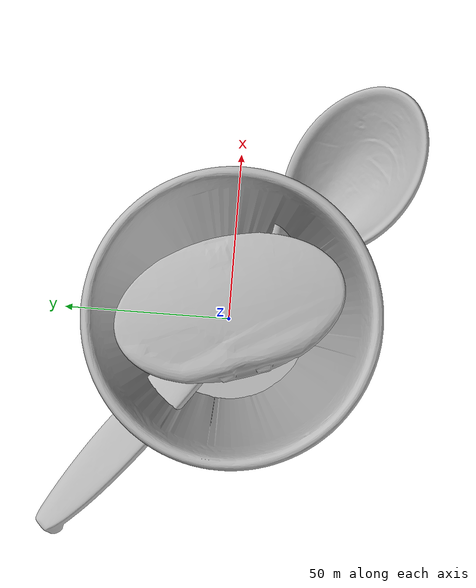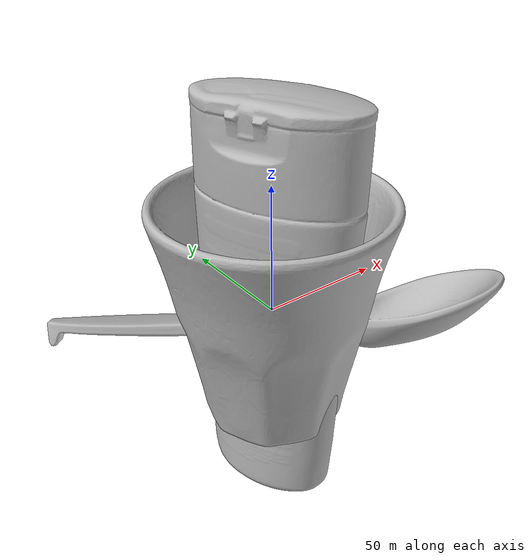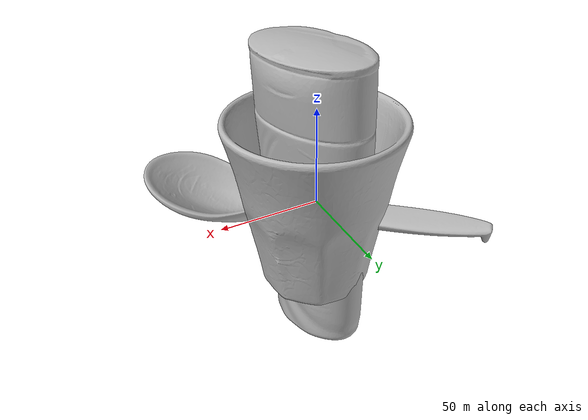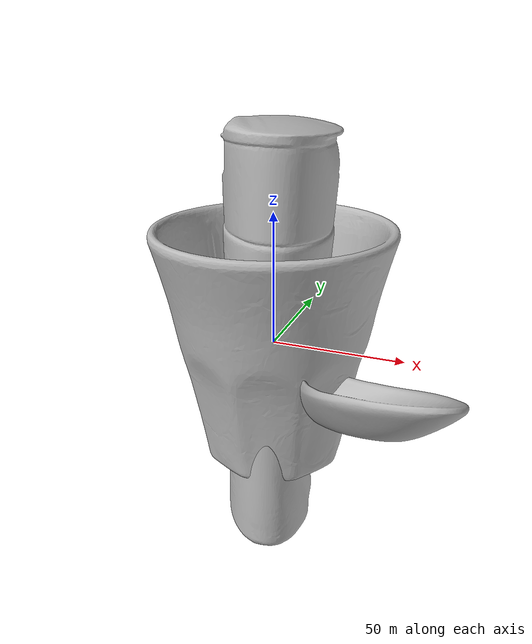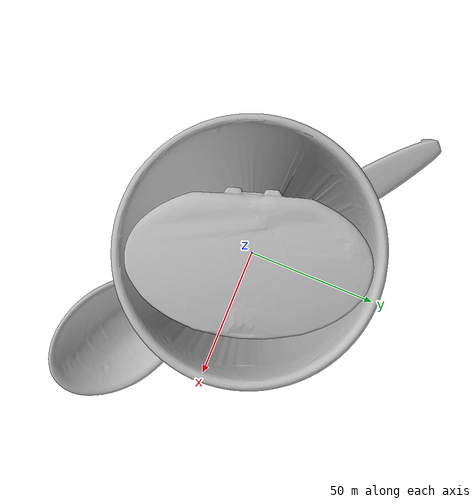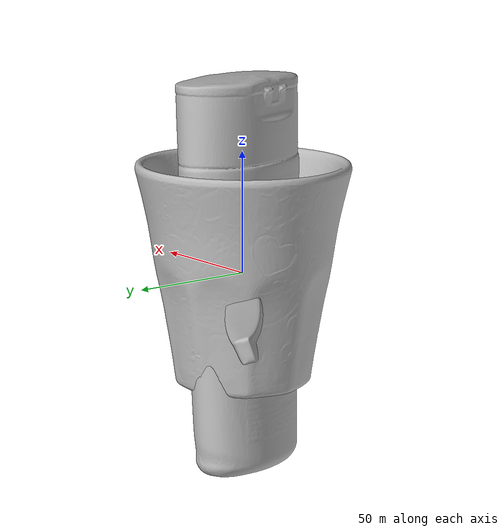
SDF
<sdf version="1.4">
 <world name="default">
  <light name="light1" type="point">
   <pose>0 0 1 0 0 0</pose>
   <diffuse>3 3 3 1</diffuse>
   <specular>3 3 3 1</specular>
  </light>
  <light name="light2" type="point">
   <pose>0 0.5 2 0 0 0</pose>
   <diffuse>1 1 1 1</diffuse>
   <specular>1 1 1 1</specular>
  </light>
  <light name="light3" type="point">
   <pose>0 0.5 2 0 0 0</pose>
   <diffuse>3 3 3 1</diffuse>
   <specular>3 3 3 1</specular>
  </light>
  <scene><ambient>0.7 0.7 0.7</ambient></scene>
  <model name="bottle1">
   <link name="link_bottle1">
    <collision name="default">
     <geometry>
      <mesh><uri>model://pure_zhen/collision_meshes/collision.obj</uri><scale>1.0 1.0 1.0</scale></mesh>
     </geometry>
     <surface>
      <friction><ode><mu>0.5</mu><mu2>0.5</mu2></ode></friction>
      <contact><ode><max_vel>0</max_vel><min_depth>0.0001</min_depth><kp>1e8</kp></ode></contact>
     </surface>
    </collision>
    <visual name="default">
     <geometry>
      <mesh><uri>model://pure_zhen/visual_meshes/visual.dae</uri><scale>1.0 1.0 1.0</scale></mesh>
     </geometry>
    </visual>
    <inertial>
     <mass>0.21128538250923157</mass>
     <pose>-8.582300506532192e-05 0.0002452346670906991 -0.0015797390369698405 -0.027642443229877835 0.005619248866174896 0.3057200614584077</pose>
     <inertia>
      <ixx>0.00063332287</ixx>
      <iyy>0.00063348823</iyy>
      <izz>6.6904315e-05</izz>
      <ixy>0</ixy>
      <ixz>0</ixz>
      <iyz>0</iyz>
     </inertia>
    </inertial>
   </link>
   <pose>-0.038743775337934494 -0.18239280581474304 0.0919484794139862 0.01948946676997719 -0.01608982380629664 0.4228522556674393</pose>
  </model>
  <model name="bottle2">
   <link name="link_bottle2">
    <collision name="default">
     <geometry>
      <mesh><uri>model://conditioner/collision_meshes/collision.obj</uri><scale>1.0 1.0 1.0</scale></mesh>
     </geometry>
     <surface>
      <friction><ode><mu>0.5</mu><mu2>0.5</mu2></ode></friction>
      <contact><ode><max_vel>0</max_vel><min_depth>0.0001</min_depth><kp>1e8</kp></ode></contact>
     </surface>
    </collision>
    <visual name="default">
     <geometry>
      <mesh><uri>model://conditioner/visual_meshes/visual.dae</uri><scale>1.0 1.0 1.0</scale></mesh>
     </geometry>
    </visual>
    <inertial>
     <mass>0.3611464500427246</mass>
     <pose>-0.00055994390277192 -0.0001729748910292983 0.004359682556241751 -0.005038374424784669 0.01530604350153207 0.015072341368129788</pose>
     <inertia>
      <ixx>0.00078562286</ixx>
      <iyy>0.0008415716</iyy>
      <izz>0.00012113213</izz>
      <ixy>0</ixy>
      <ixz>0</ixz>
      <iyz>0</iyz>
     </inertia>
    </inertial>
   </link>
   <pose>0.28108954429626465 -0.026738567277789116 0.08122971653938293 0.0368926025399164 -0.015660371576268987 1.8709059151442766</pose>
  </model>
  <model name="silverware1">
   <link name="link_silverware1">
    <collision name="default">
     <geometry>
      <mesh><uri>model://doraemon_spoon/collision_meshes/collision.obj</uri><scale>1.0 1.0 1.0</scale></mesh>
     </geometry>
     <surface>
      <friction><ode><mu>0.5</mu><mu2>0.5</mu2></ode></friction>
      <contact><ode><max_vel>0</max_vel><min_depth>0.0001</min_depth><kp>1e8</kp></ode></contact>
     </surface>
    </collision>
    <visual name="default">
     <geometry>
      <mesh><uri>model://doraemon_spoon/visual_meshes/visual.dae</uri><scale>1.0 1.0 1.0</scale></mesh>
     </geometry>
    </visual>
    <inertial>
     <mass>0.02099660225212574</mass>
     <pose>-0.02216508239507675 -0.0006374581134878099 -0.003332545980811119 -0.009147162014623967 0.07380421234862718 -0.01412382746948542</pose>
     <inertia>
      <ixx>1.6446534e-06</ixx>
      <iyy>4.671061e-05</iyy>
      <izz>4.7504738e-05</izz>
      <ixy>0</ixy>
      <ixz>0</ixz>
      <iyz>0</iyz>
     </inertia>
    </inertial>
   </link>
   <pose>-0.028005775064229965 0.0980353057384491 0.014739317819476128 0.2790284268736299 -0.010336625663991897 2.4890511897461276</pose>
  </model>
  <model name="stationery1">
   <link name="link_stationery1">
    <collision name="default">
     <geometry>
      <mesh><uri>model://correction_fuid/collision_meshes/collision.obj</uri><scale>1.0 1.0 1.0</scale></mesh>
     </geometry>
     <surface>
      <friction><ode><mu>0.5</mu><mu2>0.5</mu2></ode></friction>
      <contact><ode><max_vel>0</max_vel><min_depth>0.0001</min_depth><kp>1e8</kp></ode></contact>
     </surface>
    </collision>
    <visual name="default">
     <geometry>
      <mesh><uri>model://correction_fuid/visual_meshes/visual.dae</uri><scale>1.0 1.0 1.0</scale></mesh>
     </geometry>
    </visual>
    <inertial>
     <mass>0.046645622700452805</mass>
     <pose>-0.00012557735317386687 -0.0009722909890115261 -0.001618212671019137 -0.010846607840907904 0.019488357502694276 -0.015992455488392</pose>
     <inertia>
      <ixx>4.5177083e-05</ixx>
      <iyy>2.7341744e-06</iyy>
      <izz>4.635291e-05</izz>
      <ixy>0</ixy>
      <ixz>0</ixz>
      <iyz>0</iyz>
     </inertia>
    </inertial>
   </link>
   <pose>0.014333424158394337 -0.020565832033753395 0.009632827714085579 -0.0017271179509640029 -0.056167953000969856 2.0068774417103112</pose>
  </model>
  <model name="bowl1">
   <link name="link_bowl1">
    <collision name="default">
     <geometry>
      <mesh><uri>model://doraemon_bowl/collision_meshes/collision.obj</uri><scale>1.0 1.0 1.0</scale></mesh>
     </geometry>
     <surface>
      <friction><ode><mu>0.5</mu><mu2>0.5</mu2></ode></friction>
      <contact><ode><max_vel>0</max_vel><min_depth>0.0001</min_depth><kp>1e8</kp></ode></contact>
     </surface>
    </collision>
    <visual name="default">
     <geometry>
      <mesh><uri>model://doraemon_bowl/visual_meshes/visual.dae</uri><scale>1.0 1.0 1.0</scale></mesh>
     </geometry>
    </visual>
    <inertial>
     <mass>0.11811670660972595</mass>
     <pose>-0.014629551209509373 0.0004857121384702623 -0.0020864885300397873 -0.00509396228069995 -0.10568398533611668 -0.02642645986873745</pose>
     <inertia>
      <ixx>0.00016378764</ixx>
      <iyy>0.00021554313</iyy>
      <izz>0.00031711452</izz>
      <ixy>0</ixy>
      <ixz>0</ixz>
      <iyz>0</iyz>
     </inertia>
    </inertial>
   </link>
   <pose>0.17790354788303375 -0.06250491738319397 0.02588142268359661 0.00822980074883828 0.0066985316471581575 1.5488408148795914</pose>
  </model>
  <model name="cup1">
   <link name="link_cup1">
    <collision name="default">
     <geometry>
      <mesh><uri>model://hello_kitty_cup/collision_meshes/collision.obj</uri><scale>1.0 1.0 1.0</scale></mesh>
     </geometry>
     <surface>
      <friction><ode><mu>0.5</mu><mu2>0.5</mu2></ode></friction>
      <contact><ode><max_vel>0</max_vel><min_depth>0.0001</min_depth><kp>1e8</kp></ode></contact>
     </surface>
    </collision>
    <visual name="default">
     <geometry>
      <mesh><uri>model://hello_kitty_cup/visual_meshes/visual.dae</uri><scale>1.0 1.0 1.0</scale></mesh>
     </geometry>
    </visual>
    <inertial>
     <mass>0.06522195786237717</mass>
     <pose>0.00027251147548668087 0.0002795039035845548 0.003044978016987443 0.05779148941225366 0.007964866585370347 -0.020452001862605422</pose>
     <inertia>
      <ixx>8.981858e-05</ixx>
      <iyy>9.081978e-05</iyy>
      <izz>7.573251e-05</izz>
      <ixy>0</ixy>
      <ixz>0</ixz>
      <iyz>0</iyz>
     </inertia>
    </inertial>
   </link>
   <pose>0.23519396781921387 -0.27193838357925415 0.04621489346027374 -0.005676453817602647 0.010836237199970991 -2.072852932796089</pose>
  </model>
  <model name="plate1">
   <link name="link_plate1">
    <collision name="default">
     <geometry>
      <mesh><uri>model://hello_kitty_plate/collision_meshes/collision.obj</uri><scale>1.0 1.0 1.0</scale></mesh>
     </geometry>
     <surface>
      <friction><ode><mu>0.5</mu><mu2>0.5</mu2></ode></friction>
      <contact><ode><max_vel>0</max_vel><min_depth>0.0001</min_depth><kp>1e8</kp></ode></contact>
     </surface>
    </collision>
    <visual name="default">
     <geometry>
      <mesh><uri>model://hello_kitty_plate/visual_meshes/visual.dae</uri><scale>1.0 1.0 1.0</scale></mesh>
     </geometry>
    </visual>
    <inertial>
     <mass>0.08260300010442734</mass>
     <pose>0.0073142931796610355 0.0002893725468311459 -0.0027947169728577137 -0.00010432002488368626 -0.007054440417891238 -0.014449022362072891</pose>
     <inertia>
      <ixx>0.0001592833</ixx>
      <iyy>0.00030061565</iyy>
      <izz>0.0004564546</izz>
      <ixy>0</ixy>
      <ixz>0</ixz>
      <iyz>0</iyz>
     </inertia>
    </inertial>
   </link>
   <pose>0.14699265360832214 -0.26769644021987915 0.051787953823804855 0.8613186796406292 0.007405310003111521 -1.798890328894861</pose>
  </model>
  <model name="box4">
   <link name="link_box4">
    <collision name="default">
     <geometry>
      <mesh><uri>model://wooden_puzzle1/collision_meshes/collision.obj</uri><scale>1.0 1.0 1.0</scale></mesh>
     </geometry>
     <surface>
      <friction><ode><mu>0.5</mu><mu2>0.5</mu2></ode></friction>
      <contact><ode><max_vel>0</max_vel><min_depth>0.0001</min_depth><kp>1e8</kp></ode></contact>
     </surface>
    </collision>
    <visual name="default">
     <geometry>
      <mesh><uri>model://wooden_puzzle1/visual_meshes/visual.dae</uri><scale>1.0 1.0 1.0</scale></mesh>
     </geometry>
    </visual>
    <inertial>
     <mass>0.034562814980745316</mass>
     <pose>-0.0001735068071866408 7.97226166469045e-05 -9.191555000143126e-05 -0.07784459827727222 -0.2636103773563706 -0.5528705263726328</pose>
     <inertia>
      <ixx>6.5210584e-06</ixx>
      <iyy>6.395525e-06</iyy>
      <izz>6.471823e-06</izz>
      <ixy>0</ixy>
      <ixz>0</ixz>
      <iyz>0</iyz>
     </inertia>
    </inertial>
   </link>
   <pose>0.16900883615016937 -0.08587455749511719 0.02075834572315216 -0.010730105967746902 -0.007456741440936004 -0.670179286135145</pose>
  </model>
  <physics type="ode">
   <max_contacts>50</max_contacts>
   <ode>
    <solver><type>quick</type><iters>75</iters></solver>
    <constraints>
     <contact_max_correcting_vel>0</contact_max_correcting_vel>
     <contact_surface_layer>0</contact_surface_layer>
    </constraints>
   </ode>
  </physics>
 </world>
</sdf>
